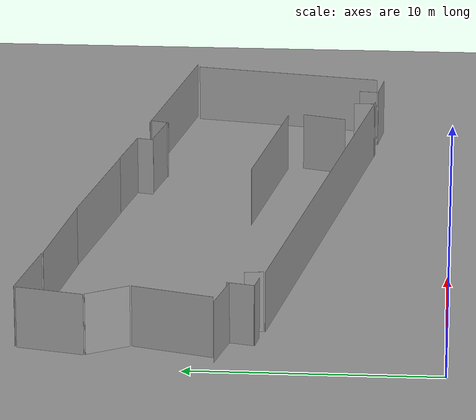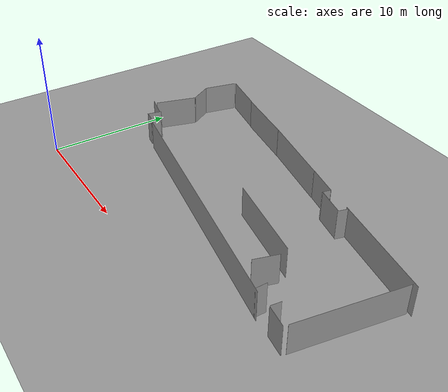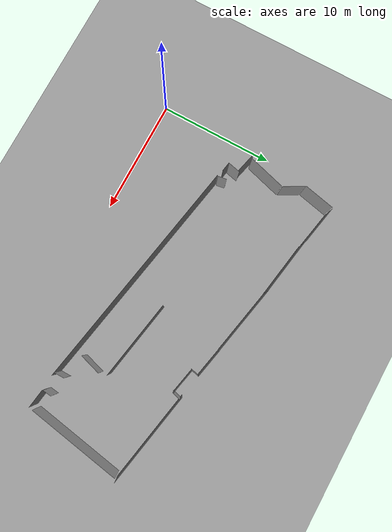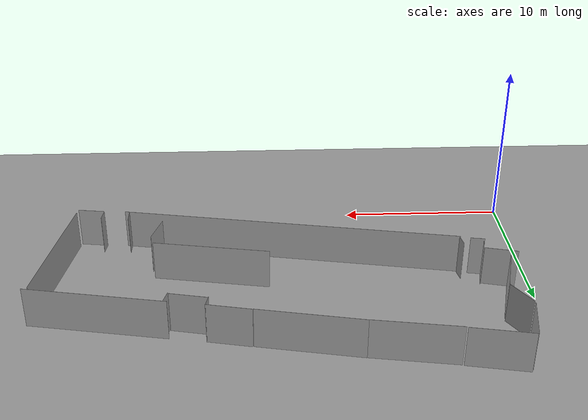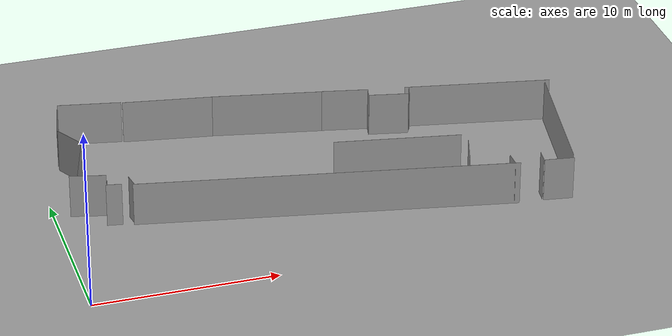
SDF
<sdf version="1.3999999999999999">
 <world name="default">
  <light name="sun" type="directional">
   <pose>0 0 20 0 0 0</pose>
   <diffuse>0.8 0.8 0.8 1</diffuse>
   <specular>0.2 0.2 0.2 1</specular>
   <attenuation>
    <range>1000</range>
    <constant>0.90000000000000002</constant>
    <linear>0.01</linear>
    <quadratic>0.001</quadratic>
   </attenuation>
   <direction>-0.5 0.1 -0.9</direction>
  </light>
  <model name="imu">
   <static>1</static>
   <link name="wall_0">
    <collision name="wall_0_collision">
     <geometry><box><size>6.114338 0.01 2.5</size></box></geometry>
     <pose>0 0 1.25 0 0 0</pose>
    </collision>
    <visual name="wall_0_visual">
     <pose>0 0 1.25 0 0 0</pose>
     <geometry><box><size>6.114338 0.01 2.5</size></box></geometry>
     <material>
      <script><uri>file://media/materials/scripts/gazebo.material</uri><name>Gazebo/Grey</name></script>
     </material>
    </visual>
    <velocity_decay><linear>0</linear><angular>0</angular></velocity_decay>
    <pose>13.3715 14.459 0 0 0 -0.1945409</pose>
   </link>
   <link name="wall_1">
    <collision name="wall_1_collision">
     <geometry><box><size>8.179304 0.01 2.5</size></box></geometry>
     <pose>0 0 1.25 0 0 0</pose>
    </collision>
    <visual name="wall_1_visual">
     <pose>0 0 1.25 0 0 0</pose>
     <geometry><box><size>8.179304 0.01 2.5</size></box></geometry>
     <material>
      <script><uri>file://media/materials/scripts/gazebo.material</uri><name>Gazebo/Grey</name></script>
     </material>
    </visual>
    <velocity_decay><linear>0</linear><angular>0</angular></velocity_decay>
    <pose>25.0025 12.2735 0 0 0 -0.182817</pose>
   </link>
   <link name="wall_2">
    <collision name="wall_2_collision">
     <geometry><box><size>8.241845 0.01 2.5</size></box></geometry>
     <pose>0 0 1.25 0 0 0</pose>
    </collision>
    <visual name="wall_2_visual">
     <pose>0 0 1.25 0 0 0</pose>
     <geometry><box><size>8.241845 0.01 2.5</size></box></geometry>
     <material>
      <script><uri>file://media/materials/scripts/gazebo.material</uri><name>Gazebo/Grey</name></script>
     </material>
    </visual>
    <velocity_decay><linear>0</linear><angular>0</angular></velocity_decay>
    <pose>28.0045 7.357 0 0 0 -1.738658</pose>
   </link>
   <link name="wall_3">
    <collision name="wall_3_collision">
     <geometry><box><size>1.621395 0.01 2.5</size></box></geometry>
     <pose>0 0 1.25 0 0 0</pose>
    </collision>
    <visual name="wall_3_visual">
     <pose>0 0 1.25 0 0 0</pose>
     <geometry><box><size>1.621395 0.01 2.5</size></box></geometry>
     <material>
      <script><uri>file://media/materials/scripts/gazebo.material</uri><name>Gazebo/Grey</name></script>
     </material>
    </visual>
    <velocity_decay><linear>0</linear><angular>0</angular></velocity_decay>
    <pose>26.44678 3.094394 0 0 0 2.999693</pose>
   </link>
   <link name="wall_4">
    <collision name="wall_4_collision">
     <geometry><box><size>0.7794803 0.01 2.5</size></box></geometry>
     <pose>0 0 1.25 0 0 0</pose>
    </collision>
    <visual name="wall_4_visual">
     <pose>0 0 1.25 0 0 0</pose>
     <geometry><box><size>0.7794803 0.01 2.5</size></box></geometry>
     <material>
      <script><uri>file://media/materials/scripts/gazebo.material</uri><name>Gazebo/Grey</name></script>
     </material>
    </visual>
    <velocity_decay><linear>0</linear><angular>0</angular></velocity_decay>
    <pose>25.66129 3.647797 0 0 0 -1.697755</pose>
   </link>
   <link name="wall_5">
    <collision name="wall_5_collision">
     <geometry><box><size>0.9048166 0.01 2.5</size></box></geometry>
     <pose>0 0 1.25 0 0 0</pose>
    </collision>
    <visual name="wall_5_visual">
     <pose>0 0 1.25 0 0 0</pose>
     <geometry><box><size>0.9048166 0.01 2.5</size></box></geometry>
     <material>
      <script><uri>file://media/materials/scripts/gazebo.material</uri><name>Gazebo/Grey</name></script>
     </material>
    </visual>
    <velocity_decay><linear>0</linear><angular>0</angular></velocity_decay>
    <pose>24.03261 3.779407 0 0 0 -1.570767</pose>
   </link>
   <link name="wall_6">
    <collision name="wall_6_collision">
     <geometry><box><size>20.72068 0.01 2.5</size></box></geometry>
     <pose>0 0 1.25 0 0 0</pose>
    </collision>
    <visual name="wall_6_visual">
     <pose>0 0 1.25 0 0 0</pose>
     <geometry><box><size>20.72068 0.01 2.5</size></box></geometry>
     <material>
      <script><uri>file://media/materials/scripts/gazebo.material</uri><name>Gazebo/Grey</name></script>
     </material>
    </visual>
    <velocity_decay><linear>0</linear><angular>0</angular></velocity_decay>
    <pose>14.1226 5.166608 0 0 0 2.959855</pose>
   </link>
   <link name="wall_7">
    <collision name="wall_7_collision">
     <geometry><box><size>6.974973 0.01 2.5</size></box></geometry>
     <pose>0 0 1.25 0 0 0</pose>
    </collision>
    <visual name="wall_7_visual">
     <pose>0 0 1.25 0 0 0</pose>
     <geometry><box><size>6.974973 0.01 2.5</size></box></geometry>
     <material>
      <script><uri>file://media/materials/scripts/gazebo.material</uri><name>Gazebo/Grey</name></script>
     </material>
    </visual>
    <velocity_decay><linear>0</linear><angular>0</angular></velocity_decay>
    <pose>18.81976 7.659097 0 0 0 -0.1728147</pose>
   </link>
   <link name="wall_8">
    <collision name="wall_8_collision">
     <geometry><box><size>1.917801 0.01 2.5</size></box></geometry>
     <pose>0 0 1.25 0 0 0</pose>
    </collision>
    <visual name="wall_8_visual">
     <pose>0 0 1.25 0 0 0</pose>
     <geometry><box><size>1.917801 0.01 2.5</size></box></geometry>
     <material>
      <script><uri>file://media/materials/scripts/gazebo.material</uri><name>Gazebo/Grey</name></script>
     </material>
    </visual>
    <velocity_decay><linear>0</linear><angular>0</angular></velocity_decay>
    <pose>22.15207 5.471556 0 0 0 -1.86286</pose>
   </link>
   <link name="wall_9">
    <collision name="wall_9_collision">
     <geometry><box><size>0.7662129 0.01 2.5</size></box></geometry>
     <pose>0 0 1.25 0 0 0</pose>
    </collision>
    <visual name="wall_9_visual">
     <pose>0 0 1.25 0 0 0</pose>
     <geometry><box><size>0.7662129 0.01 2.5</size></box></geometry>
     <material>
      <script><uri>file://media/materials/scripts/gazebo.material</uri><name>Gazebo/Grey</name></script>
     </material>
    </visual>
    <velocity_decay><linear>0</linear><angular>0</angular></velocity_decay>
    <pose>3.952113 7.473281 0 0 0 -1.419761</pose>
   </link>
   <link name="wall_10">
    <collision name="wall_10_collision">
     <geometry><box><size>0.8437181 0.01 2.5</size></box></geometry>
     <pose>0 0 1.25 0 0 0</pose>
    </collision>
    <visual name="wall_10_visual">
     <pose>0 0 1.25 0 0 0</pose>
     <geometry><box><size>0.8437181 0.01 2.5</size></box></geometry>
     <material>
      <script><uri>file://media/materials/scripts/gazebo.material</uri><name>Gazebo/Grey</name></script>
     </material>
    </visual>
    <velocity_decay><linear>0</linear><angular>0</angular></velocity_decay>
    <pose>2.961408 7.300142 0 0 0 2.974344</pose>
   </link>
   <link name="wall_11">
    <collision name="wall_11_collision">
     <geometry><box><size>1.098096 0.01 2.5</size></box></geometry>
     <pose>0 0 1.25 0 0 0</pose>
    </collision>
    <visual name="wall_11_visual">
     <pose>0 0 1.25 0 0 0</pose>
     <geometry><box><size>1.098096 0.01 2.5</size></box></geometry>
     <material>
      <script><uri>file://media/materials/scripts/gazebo.material</uri><name>Gazebo/Grey</name></script>
     </material>
    </visual>
    <velocity_decay><linear>0</linear><angular>0</angular></velocity_decay>
    <pose>2.723709 7.926781 0 0 0 -1.79908</pose>
   </link>
   <link name="wall_12">
    <collision name="wall_12_collision">
     <geometry><box><size>1.967968 0.01 2.5</size></box></geometry>
     <pose>0 0 1.25 0 0 0</pose>
    </collision>
    <visual name="wall_12_visual">
     <pose>0 0 1.25 0 0 0</pose>
     <geometry><box><size>1.967968 0.01 2.5</size></box></geometry>
     <material>
      <script><uri>file://media/materials/scripts/gazebo.material</uri><name>Gazebo/Grey</name></script>
     </material>
    </visual>
    <velocity_decay><linear>0</linear><angular>0</angular></velocity_decay>
    <pose>1.841488 8.582348 0 0 0 -0.2383188</pose>
   </link>
   <link name="wall_13">
    <collision name="wall_13_collision">
     <geometry><box><size>3.322738 0.01 2.5</size></box></geometry>
     <pose>0 0 1.25 0 0 0</pose>
    </collision>
    <visual name="wall_13_visual">
     <pose>0 0 1.25 0 0 0</pose>
     <geometry><box><size>3.322738 0.01 2.5</size></box></geometry>
     <material>
      <script><uri>file://media/materials/scripts/gazebo.material</uri><name>Gazebo/Grey</name></script>
     </material>
    </visual>
    <velocity_decay><linear>0</linear><angular>0</angular></velocity_decay>
    <pose>1.811432 10.46182 0 0 0 1.291747</pose>
   </link>
   <link name="wall_14">
    <collision name="wall_14_collision">
     <geometry><box><size>1.874861 0.01 2.5</size></box></geometry>
     <pose>0 0 1.25 0 0 0</pose>
    </collision>
    <visual name="wall_14_visual">
     <pose>0 0 1.25 0 0 0</pose>
     <geometry><box><size>1.874861 0.01 2.5</size></box></geometry>
     <material>
      <script><uri>file://media/materials/scripts/gazebo.material</uri><name>Gazebo/Grey</name></script>
     </material>
    </visual>
    <velocity_decay><linear>0</linear><angular>0</angular></velocity_decay>
    <pose>1.805267 12.93884 0 0 0 2.085626</pose>
   </link>
   <link name="wall_15">
    <collision name="wall_15_collision">
     <geometry><box><size>2.719715 0.01 2.5</size></box></geometry>
     <pose>0 0 1.25 0 0 0</pose>
    </collision>
    <visual name="wall_15_visual">
     <pose>0 0 1.25 0 0 0</pose>
     <geometry><box><size>2.719715 0.01 2.5</size></box></geometry>
     <material>
      <script><uri>file://media/materials/scripts/gazebo.material</uri><name>Gazebo/Grey</name></script>
     </material>
    </visual>
    <velocity_decay><linear>0</linear><angular>0</angular></velocity_decay>
    <pose>1.597167 15.13441 0 0 0 1.356595</pose>
   </link>
   <link name="wall_16">
    <collision name="wall_16_collision">
     <geometry><box><size>3.512502 0.01 2.5</size></box></geometry>
     <pose>0 0 1.25 0 0 0</pose>
    </collision>
    <visual name="wall_16_visual">
     <pose>0 0 1.25 0 0 0</pose>
     <geometry><box><size>3.512502 0.01 2.5</size></box></geometry>
     <material>
      <script><uri>file://media/materials/scripts/gazebo.material</uri><name>Gazebo/Grey</name></script>
     </material>
    </visual>
    <velocity_decay><linear>0</linear><angular>0</angular></velocity_decay>
    <pose>3.656637 16.20142 0 0 0 -0.1883853</pose>
   </link>
   <link name="wall_17">
    <collision name="wall_17_collision">
     <geometry><box><size>4.991703 0.01 2.5</size></box></geometry>
     <pose>0 0 1.25 0 0 0</pose>
    </collision>
    <visual name="wall_17_visual">
     <pose>0 0 1.25 0 0 0</pose>
     <geometry><box><size>4.991703 0.01 2.5</size></box></geometry>
     <material>
      <script><uri>file://media/materials/scripts/gazebo.material</uri><name>Gazebo/Grey</name></script>
     </material>
    </visual>
    <velocity_decay><linear>0</linear><angular>0</angular></velocity_decay>
    <pose>7.909864 15.43056 0 0 0 -0.1582266</pose>
   </link>
   <link name="wall_18">
    <collision name="wall_18_collision">
     <geometry><box><size>2.585477 0.01 2.5</size></box></geometry>
     <pose>0 0 1.25 0 0 0</pose>
    </collision>
    <visual name="wall_18_visual">
     <pose>0 0 1.25 0 0 0</pose>
     <geometry><box><size>2.585477 0.01 2.5</size></box></geometry>
     <material>
      <script><uri>file://media/materials/scripts/gazebo.material</uri><name>Gazebo/Grey</name></script>
     </material>
    </visual>
    <velocity_decay><linear>0</linear><angular>0</angular></velocity_decay>
    <pose>17.66653 13.62148 0 0 0 -0.2036843</pose>
   </link>
   <link name="wall_19">
    <collision name="wall_19_collision">
     <geometry><box><size>0.7243103 0.01 2.5</size></box></geometry>
     <pose>0 0 1.25 0 0 0</pose>
    </collision>
    <visual name="wall_19_visual">
     <pose>0 0 1.25 0 0 0</pose>
     <geometry><box><size>0.7243103 0.01 2.5</size></box></geometry>
     <material>
      <script><uri>file://media/materials/scripts/gazebo.material</uri><name>Gazebo/Grey</name></script>
     </material>
    </visual>
    <velocity_decay><linear>0</linear><angular>0</angular></velocity_decay>
    <pose>18.83686 13.03153 0 0 0 1.357823</pose>
   </link>
   <link name="wall_20">
    <collision name="wall_20_collision">
     <geometry><box><size>2.206718 0.01 2.5</size></box></geometry>
     <pose>0 0 1.25 0 0 0</pose>
    </collision>
    <visual name="wall_20_visual">
     <pose>0 0 1.25 0 0 0</pose>
     <geometry><box><size>2.206718 0.01 2.5</size></box></geometry>
     <material>
      <script><uri>file://media/materials/scripts/gazebo.material</uri><name>Gazebo/Grey</name></script>
     </material>
    </visual>
    <velocity_decay><linear>0</linear><angular>0</angular></velocity_decay>
    <pose>19.87234 12.49686 0 0 0 2.93734</pose>
   </link>
   <link name="wall_21">
    <collision name="wall_21_collision">
     <geometry><box><size>0.7770222 0.01 2.5</size></box></geometry>
     <pose>0 0 1.25 0 0 0</pose>
    </collision>
    <visual name="wall_21_visual">
     <pose>0 0 1.25 0 0 0</pose>
     <geometry><box><size>0.7770222 0.01 2.5</size></box></geometry>
     <material>
      <script><uri>file://media/materials/scripts/gazebo.material</uri><name>Gazebo/Grey</name></script>
     </material>
    </visual>
    <velocity_decay><linear>0</linear><angular>0</angular></velocity_decay>
    <pose>21.08781 12.58561 0 0 0 1.299357</pose>
   </link>
  </model>
  <physics type="ode">
   <max_step_size>0.001</max_step_size>
   <real_time_factor>1</real_time_factor>
   <real_time_update_rate>1000</real_time_update_rate>
   <gravity>0 0 -9.8</gravity>
  </physics>
  <scene><ambient>0.4 0.4 0.4 1</ambient><background>0.7 0.7 0.7 1</background><shadows>1</shadows></scene>
  <spherical_coordinates>
   <surface_model>EARTH_WGS84</surface_model>
   <latitude_deg>0</latitude_deg>
   <longitude_deg>0</longitude_deg>
   <elevation>0</elevation>
   <heading_deg>0</heading_deg>
  </spherical_coordinates>
  <light name="sun" type="directional">
   <pose>0 0 20 0 0 0</pose>
   <diffuse>0.8 0.8 0.8 1</diffuse>
   <specular>0.2 0.2 0.2 1</specular>
   <attenuation>
    <range>1000</range>
    <constant>0.90000000000000002</constant>
    <linear>0.01</linear>
    <quadratic>0.001</quadratic>
   </attenuation>
   <direction>-0.5 0.1 -0.9</direction>
  </light>
  <model name="ground_plane_0">
   <static>1</static>
   <link name="link">
    <collision name="collision">
     <geometry><plane><normal>0 0 1</normal><size>100 100</size></plane></geometry>
     <surface><friction><ode><mu>100</mu><mu2>50</mu2></ode></friction></surface>
    </collision>
    <visual name="visual">
     <cast_shadows>0</cast_shadows>
     <geometry><plane><normal>0 0 1</normal><size>100 100</size></plane></geometry>
     <material>
      <script><uri>file://media/materials/scripts/gazebo.material</uri><name>Gazebo/Grey</name></script>
     </material>
    </visual>
    <velocity_decay><linear>0</linear><angular>0</angular></velocity_decay>
   </link>
   <pose>4.53846 -8 0 0 0 0</pose>
  </model>
 </world>
</sdf>
